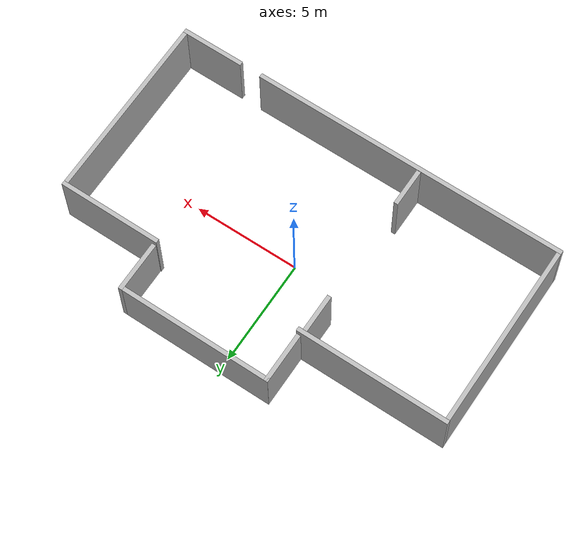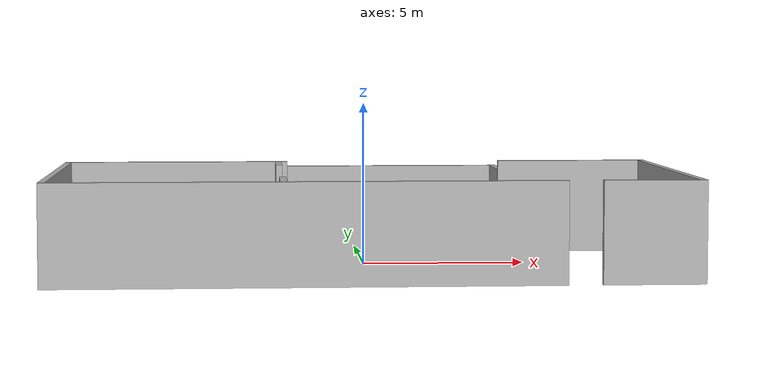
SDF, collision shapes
<?xml version="1.0" ?>
<sdf version="1.6">
  <model name="aws_robomaker_residential_HouseWallB_01">
    <link name="link">
      <inertial>
        <mass>1</mass>
      </inertial>
      <collision name="aws_housewallb_01_collision_collider_box">
        <pose>-1.996084 -5.602745 1.5 0.0 -0.0 0.0</pose>
        <geometry>
          <box>
            <size>15.007833 0.200933 3.0</size>
          </box>
        </geometry>
      </collision>
      <collision name="aws_housewallb_01_collision_collider_box.001">
        <pose>8.005939 -5.602745 1.5 0.0 -0.0 0.0</pose>
        <geometry>
          <box>
            <size>2.997025 0.200933 3.0</size>
          </box>
        </geometry>
      </collision>
      <collision name="aws_housewallb_01_collision_collider_box.002">
        <pose>9.401368 -1.199342 1.5 0.0 -0.0 -1.570796</pose>
        <geometry>
          <box>
            <size>8.608625 0.200933 3.0</size>
          </box>
        </geometry>
      </collision>
      <collision name="aws_housewallb_01_collision_collider_box.003">
        <pose>7.069981 3.199887 1.5 0.0 -0.0 0.0</pose>
        <geometry>
          <box>
            <size>4.859607 0.200933 3.0</size>
          </box>
        </geometry>
      </collision>
      <collision name="aws_housewallb_01_collision_collider_box.004">
        <pose>-5.900631 3.199887 1.5 0.0 -0.0 0.0</pose>
        <geometry>
          <box>
            <size>7.207542 0.200933 3.0</size>
          </box>
        </geometry>
      </collision>
      <collision name="aws_housewallb_01_collision_collider_box.005">
        <pose>-9.399357 -1.199342 1.5 0.0 -0.0 -1.570796</pose>
        <geometry>
          <box>
            <size>8.608625 0.200933 3.0</size>
          </box>
        </geometry>
      </collision>
      <collision name="aws_housewallb_01_collision_collider_box.006">
        <pose>-2.601289 2.20658 1.5 0.0 -0.0 -1.570796</pose>
        <geometry>
          <box>
            <size>1.796781 0.200933 3.0</size>
          </box>
        </geometry>
      </collision>
      <collision name="aws_housewallb_01_collision_collider_box.007">
        <pose>-2.601289 -4.591736 1.5 0.0 -0.0 -1.570796</pose>
        <geometry>
          <box>
            <size>1.796781 0.200933 3.0</size>
          </box>
        </geometry>
      </collision>
      <collision name="aws_housewallb_01_collision_collider_box.008">
        <pose>-2.430086 4.481725 1.344537 0.0 -0.0 -1.570796</pose>
        <geometry>
          <box>
            <size>2.427654 0.202697 2.689075</size>
          </box>
        </geometry>
      </collision>
      <collision name="aws_housewallb_01_collision_collider_box.009">
        <pose>4.772851 4.481725 1.344537 0.0 -0.0 -1.570796</pose>
        <geometry>
          <box>
            <size>2.427654 0.202697 2.689075</size>
          </box>
        </geometry>
      </collision>
      <collision name="aws_housewallb_01_collision_collider_box.010">
        <pose>1.073543 5.597441 1.344537 0.0 -0.0 -3.141593</pose>
        <geometry>
          <box>
            <size>7.207467 0.202697 2.689075</size>
          </box>
        </geometry>
      </collision>
      <visual name="visual">
	    <geometry>
          <mesh>
            <uri>model://aws_robomaker_residential_HouseWallB_01/meshes/aws_HouseWallB_01_visual.DAE</uri>
          </mesh>
        </geometry>
      <meta> <layer> 2 </layer></meta>
</visual>
    </link>
<static>1</static>
  </model>
</sdf>
